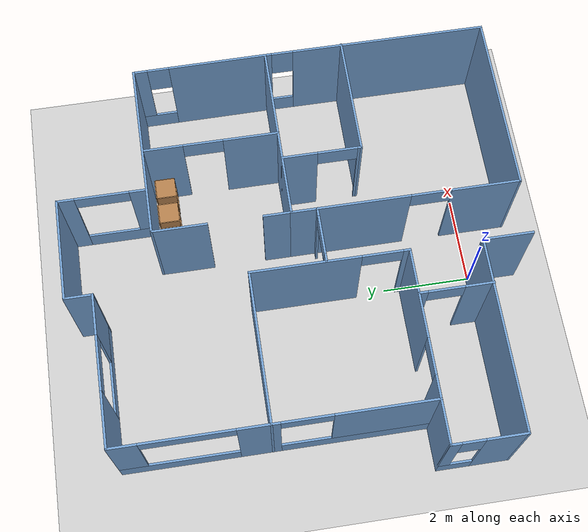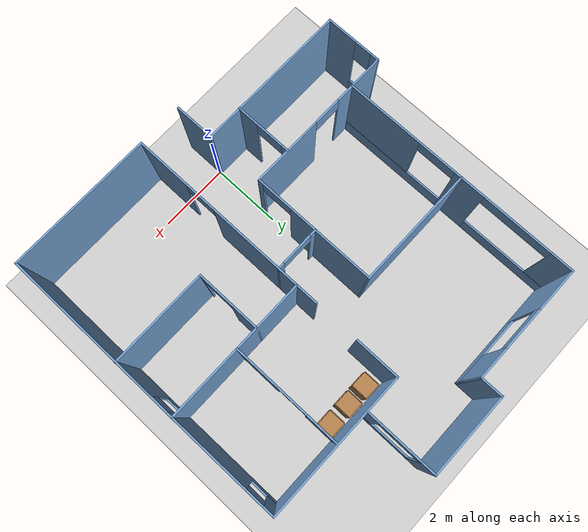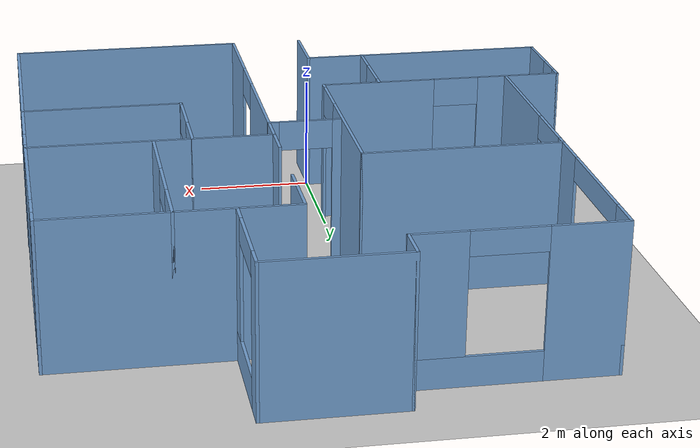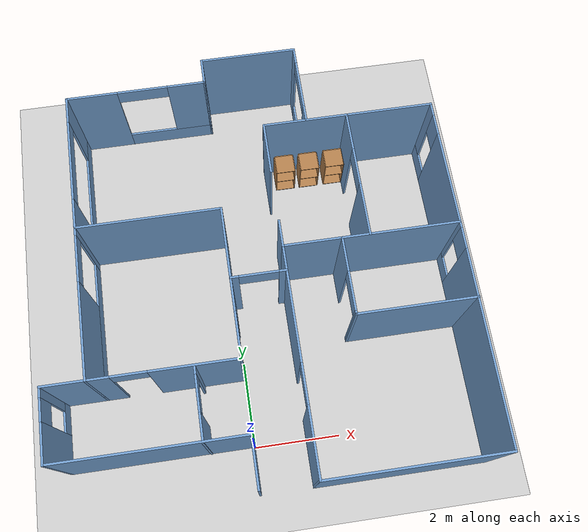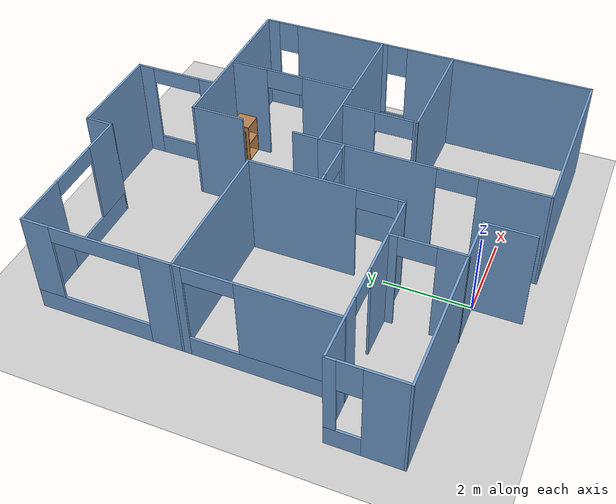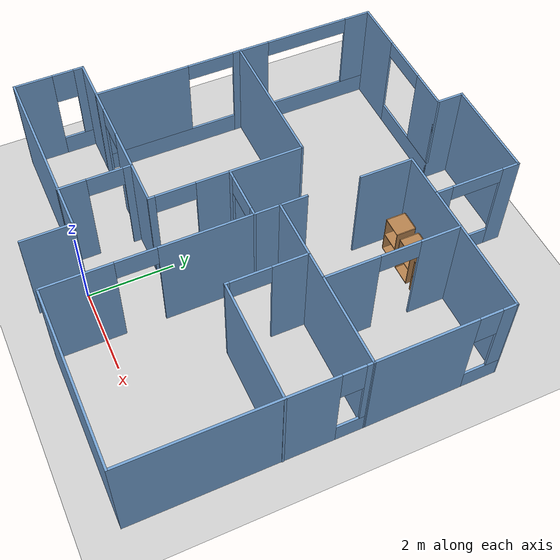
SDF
<sdf version="1.6">
 <world name="default">
  <model name="ground_plane">
   <static>1</static>
   <link name="link">
    <collision name="collision">
     <geometry><plane><normal>0 0 1</normal><size>100 100</size></plane></geometry>
     <surface>
      <contact><collide_bitmask>65535</collide_bitmask></contact>
      <friction><ode><mu>100</mu><mu2>50</mu2></ode></friction>
     </surface>
    </collision>
    <visual name="visual">
     <cast_shadows>0</cast_shadows>
     <geometry><plane><normal>0 0 1</normal><size>100 100</size></plane></geometry>
     <material>
      <script><uri>file://media/materials/scripts/gazebo.material</uri><name>Gazebo/Grey</name></script>
     </material>
    </visual>
   </link>
  </model>
  <model name="cabinet">
   <static>1</static>
   <link name="cabinet_bottom_plate">
    <inertial>
     <pose>0 0 -1 0 -0 0</pose>
     <inertia><ixx>2.05</ixx><ixy>0</ixy><ixz>0</ixz><iyy>2.05</iyy><iyz>0</iyz><izz>2.05</izz></inertia>
     <mass>25</mass>
    </inertial>
    <collision name="cabinet_bottom_plate_geom">
     <pose>0 0 0.01 0 -0 0</pose>
     <geometry><box><size>0.45 0.45 0.02</size></box></geometry>
    </collision>
    <visual name="cabinet_bottom_plate_geom_visual">
     <pose>0 0 0.01 0 -0 0</pose>
     <geometry><box><size>0.45 0.45 0.02</size></box></geometry>
     <material>
      <script><uri>file://media/materials/scripts/gazebo.material</uri><name>Gazebo/Wood</name></script>
     </material>
    </visual>
    <collision name="cabinet_bottom_plate_geom_cabinet_back_plate">
     <pose>0.235 0 0.51 0 -0 0</pose>
     <geometry><box><size>0.02 0.45 1.02</size></box></geometry>
    </collision>
    <visual name="cabinet_bottom_plate_geom_cabinet_back_plate_visual">
     <pose>0.235 0 0.51 0 -0 0</pose>
     <geometry><box><size>0.02 0.45 1.02</size></box></geometry>
     <material>
      <script><uri>file://media/materials/scripts/gazebo.material</uri><name>Gazebo/Wood</name></script>
     </material>
    </visual>
    <collision name="cabinet_bottom_plate_geom_cabinet_left_plate">
     <pose>0 0.235 0.51 0 -0 0</pose>
     <geometry><box><size>0.45 0.02 1.02</size></box></geometry>
    </collision>
    <visual name="cabinet_bottom_plate_geom_cabinet_left_plate_visual">
     <pose>0 0.235 0.51 0 -0 0</pose>
     <geometry><box><size>0.45 0.02 1.02</size></box></geometry>
     <material>
      <script><uri>file://media/materials/scripts/gazebo.material</uri><name>Gazebo/Wood</name></script>
     </material>
    </visual>
    <collision name="cabinet_bottom_plate_geom_cabinet_middle_plate">
     <pose>0 0 0.51 0 -0 0</pose>
     <geometry><box><size>0.45 0.45 0.02</size></box></geometry>
    </collision>
    <visual name="cabinet_bottom_plate_geom_cabinet_middle_plate_visual">
     <pose>0 0 0.51 0 -0 0</pose>
     <geometry><box><size>0.45 0.45 0.02</size></box></geometry>
     <material>
      <script><uri>file://media/materials/scripts/gazebo.material</uri><name>Gazebo/Wood</name></script>
     </material>
    </visual>
    <collision name="cabinet_bottom_plate_geom_cabinet_right_plate">
     <pose>0 -0.235 0.51 0 -0 0</pose>
     <geometry><box><size>0.45 0.02 1.02</size></box></geometry>
    </collision>
    <visual name="cabinet_bottom_plate_geom_cabinet_right_plate_visual">
     <pose>0 -0.235 0.51 0 -0 0</pose>
     <geometry><box><size>0.45 0.02 1.02</size></box></geometry>
     <material>
      <script><uri>file://media/materials/scripts/gazebo.material</uri><name>Gazebo/Wood</name></script>
     </material>
    </visual>
    <collision name="cabinet_bottom_plate_geom_cabinet_top_plate">
     <pose>0 0 1.01 0 -0 0</pose>
     <geometry><box><size>0.45 0.45 0.02</size></box></geometry>
    </collision>
    <visual name="cabinet_bottom_plate_geom_cabinet_top_plate_visual">
     <pose>0 0 1.01 0 -0 0</pose>
     <geometry><box><size>0.45 0.45 0.02</size></box></geometry>
     <material>
      <script><uri>file://media/materials/scripts/gazebo.material</uri><name>Gazebo/Wood</name></script>
     </material>
    </visual>
   </link>
   <pose>2.94164 6.72302 0 0 -0 1.57</pose>
  </model>
  <model name="cabinet_clone">
   <static>1</static>
   <link name="cabinet_bottom_plate">
    <inertial>
     <pose>0 0 -1 0 -0 0</pose>
     <inertia><ixx>2.05</ixx><ixy>0</ixy><ixz>0</ixz><iyy>2.05</iyy><iyz>0</iyz><izz>2.05</izz></inertia>
     <mass>25</mass>
    </inertial>
    <collision name="cabinet_bottom_plate_geom">
     <pose>0 0 0.01 0 -0 0</pose>
     <geometry><box><size>0.45 0.45 0.02</size></box></geometry>
    </collision>
    <visual name="cabinet_bottom_plate_geom_visual">
     <pose>0 0 0.01 0 -0 0</pose>
     <geometry><box><size>0.45 0.45 0.02</size></box></geometry>
     <material>
      <script><uri>file://media/materials/scripts/gazebo.material</uri><name>Gazebo/Wood</name></script>
     </material>
    </visual>
    <collision name="cabinet_bottom_plate_geom_cabinet_back_plate">
     <pose>0.235 0 0.51 0 -0 0</pose>
     <geometry><box><size>0.02 0.45 1.02</size></box></geometry>
    </collision>
    <visual name="cabinet_bottom_plate_geom_cabinet_back_plate_visual">
     <pose>0.235 0 0.51 0 -0 0</pose>
     <geometry><box><size>0.02 0.45 1.02</size></box></geometry>
     <material>
      <script><uri>file://media/materials/scripts/gazebo.material</uri><name>Gazebo/Wood</name></script>
     </material>
    </visual>
    <collision name="cabinet_bottom_plate_geom_cabinet_left_plate">
     <pose>0 0.235 0.51 0 -0 0</pose>
     <geometry><box><size>0.45 0.02 1.02</size></box></geometry>
    </collision>
    <visual name="cabinet_bottom_plate_geom_cabinet_left_plate_visual">
     <pose>0 0.235 0.51 0 -0 0</pose>
     <geometry><box><size>0.45 0.02 1.02</size></box></geometry>
     <material>
      <script><uri>file://media/materials/scripts/gazebo.material</uri><name>Gazebo/Wood</name></script>
     </material>
    </visual>
    <collision name="cabinet_bottom_plate_geom_cabinet_middle_plate">
     <pose>0 0 0.51 0 -0 0</pose>
     <geometry><box><size>0.45 0.45 0.02</size></box></geometry>
    </collision>
    <visual name="cabinet_bottom_plate_geom_cabinet_middle_plate_visual">
     <pose>0 0 0.51 0 -0 0</pose>
     <geometry><box><size>0.45 0.45 0.02</size></box></geometry>
     <material>
      <script><uri>file://media/materials/scripts/gazebo.material</uri><name>Gazebo/Wood</name></script>
     </material>
    </visual>
    <collision name="cabinet_bottom_plate_geom_cabinet_right_plate">
     <pose>0 -0.235 0.51 0 -0 0</pose>
     <geometry><box><size>0.45 0.02 1.02</size></box></geometry>
    </collision>
    <visual name="cabinet_bottom_plate_geom_cabinet_right_plate_visual">
     <pose>0 -0.235 0.51 0 -0 0</pose>
     <geometry><box><size>0.45 0.02 1.02</size></box></geometry>
     <material>
      <script><uri>file://media/materials/scripts/gazebo.material</uri><name>Gazebo/Wood</name></script>
     </material>
    </visual>
    <collision name="cabinet_bottom_plate_geom_cabinet_top_plate">
     <pose>0 0 1.01 0 -0 0</pose>
     <geometry><box><size>0.45 0.45 0.02</size></box></geometry>
    </collision>
    <visual name="cabinet_bottom_plate_geom_cabinet_top_plate_visual">
     <pose>0 0 1.01 0 -0 0</pose>
     <geometry><box><size>0.45 0.45 0.02</size></box></geometry>
     <material>
      <script><uri>file://media/materials/scripts/gazebo.material</uri><name>Gazebo/Wood</name></script>
     </material>
    </visual>
   </link>
   <pose>2.30652 6.72096 0 0 -0 1.57</pose>
  </model>
  <model name="cabinet_clone_0">
   <static>1</static>
   <link name="cabinet_bottom_plate">
    <inertial>
     <pose>0 0 -1 0 -0 0</pose>
     <inertia><ixx>2.05</ixx><ixy>0</ixy><ixz>0</ixz><iyy>2.05</iyy><iyz>0</iyz><izz>2.05</izz></inertia>
     <mass>25</mass>
    </inertial>
    <collision name="cabinet_bottom_plate_geom">
     <pose>0 0 0.01 0 -0 0</pose>
     <geometry><box><size>0.45 0.45 0.02</size></box></geometry>
    </collision>
    <visual name="cabinet_bottom_plate_geom_visual">
     <pose>0 0 0.01 0 -0 0</pose>
     <geometry><box><size>0.45 0.45 0.02</size></box></geometry>
     <material>
      <script><uri>file://media/materials/scripts/gazebo.material</uri><name>Gazebo/Wood</name></script>
     </material>
    </visual>
    <collision name="cabinet_bottom_plate_geom_cabinet_back_plate">
     <pose>0.235 0 0.51 0 -0 0</pose>
     <geometry><box><size>0.02 0.45 1.02</size></box></geometry>
    </collision>
    <visual name="cabinet_bottom_plate_geom_cabinet_back_plate_visual">
     <pose>0.235 0 0.51 0 -0 0</pose>
     <geometry><box><size>0.02 0.45 1.02</size></box></geometry>
     <material>
      <script><uri>file://media/materials/scripts/gazebo.material</uri><name>Gazebo/Wood</name></script>
     </material>
    </visual>
    <collision name="cabinet_bottom_plate_geom_cabinet_left_plate">
     <pose>0 0.235 0.51 0 -0 0</pose>
     <geometry><box><size>0.45 0.02 1.02</size></box></geometry>
    </collision>
    <visual name="cabinet_bottom_plate_geom_cabinet_left_plate_visual">
     <pose>0 0.235 0.51 0 -0 0</pose>
     <geometry><box><size>0.45 0.02 1.02</size></box></geometry>
     <material>
      <script><uri>file://media/materials/scripts/gazebo.material</uri><name>Gazebo/Wood</name></script>
     </material>
    </visual>
    <collision name="cabinet_bottom_plate_geom_cabinet_middle_plate">
     <pose>0 0 0.51 0 -0 0</pose>
     <geometry><box><size>0.45 0.45 0.02</size></box></geometry>
    </collision>
    <visual name="cabinet_bottom_plate_geom_cabinet_middle_plate_visual">
     <pose>0 0 0.51 0 -0 0</pose>
     <geometry><box><size>0.45 0.45 0.02</size></box></geometry>
     <material>
      <script><uri>file://media/materials/scripts/gazebo.material</uri><name>Gazebo/Wood</name></script>
     </material>
    </visual>
    <collision name="cabinet_bottom_plate_geom_cabinet_right_plate">
     <pose>0 -0.235 0.51 0 -0 0</pose>
     <geometry><box><size>0.45 0.02 1.02</size></box></geometry>
    </collision>
    <visual name="cabinet_bottom_plate_geom_cabinet_right_plate_visual">
     <pose>0 -0.235 0.51 0 -0 0</pose>
     <geometry><box><size>0.45 0.02 1.02</size></box></geometry>
     <material>
      <script><uri>file://media/materials/scripts/gazebo.material</uri><name>Gazebo/Wood</name></script>
     </material>
    </visual>
    <collision name="cabinet_bottom_plate_geom_cabinet_top_plate">
     <pose>0 0 1.01 0 -0 0</pose>
     <geometry><box><size>0.45 0.45 0.02</size></box></geometry>
    </collision>
    <visual name="cabinet_bottom_plate_geom_cabinet_top_plate_visual">
     <pose>0 0 1.01 0 -0 0</pose>
     <geometry><box><size>0.45 0.45 0.02</size></box></geometry>
     <material>
      <script><uri>file://media/materials/scripts/gazebo.material</uri><name>Gazebo/Wood</name></script>
     </material>
    </visual>
   </link>
   <pose>1.70059 6.72405 0 0 -0 1.57</pose>
  </model>
  <model name="T8_1160">
   <pose>0.49359 3.97815 0 0 -0 0</pose>
   <link name="Wall_0">
    <collision name="Wall_0_Collision">
     <geometry><box><size>4.31 0.05 2.5</size></box></geometry>
     <pose>0 0 1.25 0 -0 0</pose>
    </collision>
    <visual name="Wall_0_Visual">
     <pose>0 0 1.25 0 -0 0</pose>
     <geometry><box><size>4.31 0.05 2.5</size></box></geometry>
     <material>
      <script><uri>file://media/materials/scripts/gazebo.material</uri><name>Gazebo/Grey</name></script>
      <ambient>0.447059 0.623529 0.811765 1</ambient>
     </material>
     <meta><layer>0</layer></meta>
    </visual>
    <pose>-2.645 -3.94713 0 0 -0 3.14159</pose>
   </link>
   <link name="Wall_11">
    <collision name="Wall_11_Collision">
     <geometry><box><size>3.35552 0.05 2.5</size></box></geometry>
     <pose>0 0 1.25 0 -0 0</pose>
    </collision>
    <visual name="Wall_11_Visual">
     <pose>0 0 1.25 0 -0 0</pose>
     <geometry><box><size>3.35552 0.05 2.5</size></box></geometry>
     <material>
      <script><uri>file://media/materials/scripts/gazebo.material</uri><name>Gazebo/Grey</name></script>
      <ambient>0.447059 0.623529 0.811765 1</ambient>
     </material>
     <meta><layer>0</layer></meta>
    </visual>
    <pose>-2.1675 1.12987 0 0 -0 3.14159</pose>
   </link>
   <link name="Wall_14">
    <pose>-3.82 -0.608633 0 0 -0 -1.5708</pose>
    <visual name="Wall_14_Visual_0">
     <pose>-1.65666 0 1.25 0 -0 0</pose>
     <geometry><box><size>0.213672 0.05 2.5</size></box></geometry>
     <material>
      <script><uri>file://media/materials/scripts/gazebo.material</uri><name>Gazebo/Grey</name></script>
      <ambient>0.447059 0.623529 0.811765 1</ambient>
     </material>
     <meta><layer>0</layer></meta>
    </visual>
    <collision name="Wall_14_Collision_0">
     <geometry><box><size>0.213672 0.05 2.5</size></box></geometry>
     <pose>-1.65666 0 1.25 0 -0 0</pose>
    </collision>
    <visual name="Wall_14_Visual_1">
     <pose>0.106836 0 0.25 0 -0 0</pose>
     <geometry><box><size>3.31333 0.05 0.5</size></box></geometry>
     <material>
      <script><uri>file://media/materials/scripts/gazebo.material</uri><name>Gazebo/Grey</name></script>
      <ambient>0.447059 0.623529 0.811765 1</ambient>
     </material>
     <meta><layer>0</layer></meta>
    </visual>
    <collision name="Wall_14_Collision_1">
     <geometry><box><size>3.31333 0.05 0.5</size></box></geometry>
     <pose>0.106836 0 0.25 0 -0 0</pose>
    </collision>
    <visual name="Wall_14_Visual_2">
     <pose>0.656836 0 1.5 0 -0 0</pose>
     <geometry><box><size>2.21333 0.05 2</size></box></geometry>
     <material>
      <script><uri>file://media/materials/scripts/gazebo.material</uri><name>Gazebo/Grey</name></script>
      <ambient>0.447059 0.623529 0.811765 1</ambient>
     </material>
     <meta><layer>0</layer></meta>
    </visual>
    <collision name="Wall_14_Collision_2">
     <geometry><box><size>2.21333 0.05 2</size></box></geometry>
     <pose>0.656836 0 1.5 0 -0 0</pose>
    </collision>
    <visual name="Wall_14_Visual_3">
     <pose>-0.999828 0 2.3 0 -0 0</pose>
     <geometry><box><size>1.1 0.05 0.4</size></box></geometry>
     <material>
      <script><uri>file://media/materials/scripts/gazebo.material</uri><name>Gazebo/Grey</name></script>
      <ambient>0.447059 0.623529 0.811765 1</ambient>
     </material>
     <meta><layer>0</layer></meta>
    </visual>
    <collision name="Wall_14_Collision_3">
     <geometry><box><size>1.1 0.05 0.4</size></box></geometry>
     <pose>-0.999828 0 2.3 0 -0 0</pose>
    </collision>
   </link>
   <link name="Wall_16">
    <collision name="Wall_16_Collision">
     <geometry><box><size>1.15 0.05 2.5</size></box></geometry>
     <pose>0 0 1.25 0 -0 0</pose>
    </collision>
    <visual name="Wall_16_Visual">
     <pose>0 0 1.25 0 -0 0</pose>
     <geometry><box><size>1.15 0.05 2.5</size></box></geometry>
     <material>
      <script><uri>file://media/materials/scripts/gazebo.material</uri><name>Gazebo/Grey</name></script>
      <ambient>0.447059 0.623529 0.811765 1</ambient>
     </material>
     <meta><layer>0</layer></meta>
    </visual>
    <pose>-0.515 -4.49713 0 0 -0 -1.5708</pose>
   </link>
   <link name="Wall_18">
    <pose>0.735 -2.51163 0 0 -0 1.5708</pose>
    <visual name="Wall_18_Visual_0">
     <pose>-1.78983 0 1.25 0 -0 0</pose>
     <geometry><box><size>1.56134 0.05 2.5</size></box></geometry>
     <material>
      <script><uri>file://media/materials/scripts/gazebo.material</uri><name>Gazebo/Grey</name></script>
      <ambient>0.447059 0.623529 0.811765 1</ambient>
     </material>
     <meta><layer>0</layer></meta>
    </visual>
    <collision name="Wall_18_Collision_0">
     <geometry><box><size>1.56134 0.05 2.5</size></box></geometry>
     <pose>-1.78983 0 1.25 0 -0 0</pose>
    </collision>
    <visual name="Wall_18_Visual_1">
     <pose>1.23067 0 1.25 0 -0 0</pose>
     <geometry><box><size>2.67966 0.05 2.5</size></box></geometry>
     <material>
      <script><uri>file://media/materials/scripts/gazebo.material</uri><name>Gazebo/Grey</name></script>
      <ambient>0.447059 0.623529 0.811765 1</ambient>
     </material>
     <meta><layer>0</layer></meta>
    </visual>
    <collision name="Wall_18_Collision_1">
     <geometry><box><size>2.67966 0.05 2.5</size></box></geometry>
     <pose>1.23067 0 1.25 0 -0 0</pose>
    </collision>
    <visual name="Wall_18_Visual_2">
     <pose>-0.559159 0 2.25 0 -0 0</pose>
     <geometry><box><size>0.9 0.05 0.5</size></box></geometry>
     <material>
      <script><uri>file://media/materials/scripts/gazebo.material</uri><name>Gazebo/Grey</name></script>
      <ambient>0.447059 0.623529 0.811765 1</ambient>
     </material>
     <meta><layer>0</layer></meta>
    </visual>
    <collision name="Wall_18_Collision_2">
     <geometry><box><size>0.9 0.05 0.5</size></box></geometry>
     <pose>-0.559159 0 2.25 0 -0 0</pose>
    </collision>
   </link>
   <link name="Wall_2">
    <pose>-4.775 -3.14713 0 0 -0 1.5708</pose>
    <visual name="Wall_2_Visual_0">
     <pose>-0.375725 0 1.25 0 -0 0</pose>
     <geometry><box><size>0.89855 0.05 2.5</size></box></geometry>
     <material>
      <script><uri>file://media/materials/scripts/gazebo.material</uri><name>Gazebo/Grey</name></script>
      <ambient>0.447059 0.623529 0.811765 1</ambient>
     </material>
     <meta><layer>0</layer></meta>
    </visual>
    <collision name="Wall_2_Collision_0">
     <geometry><box><size>0.89855 0.05 2.5</size></box></geometry>
     <pose>-0.375725 0 1.25 0 -0 0</pose>
    </collision>
    <visual name="Wall_2_Visual_1">
     <pose>0.449275 0 0.25 0 -0 0</pose>
     <geometry><box><size>0.75145 0.05 0.5</size></box></geometry>
     <material>
      <script><uri>file://media/materials/scripts/gazebo.material</uri><name>Gazebo/Grey</name></script>
      <ambient>0.447059 0.623529 0.811765 1</ambient>
     </material>
     <meta><layer>0</layer></meta>
    </visual>
    <collision name="Wall_2_Collision_1">
     <geometry><box><size>0.75145 0.05 0.5</size></box></geometry>
     <pose>0.449275 0 0.25 0 -0 0</pose>
    </collision>
    <visual name="Wall_2_Visual_2">
     <pose>0.699275 0 1.5 0 -0 0</pose>
     <geometry><box><size>0.25145 0.05 2</size></box></geometry>
     <material>
      <script><uri>file://media/materials/scripts/gazebo.material</uri><name>Gazebo/Grey</name></script>
      <ambient>0.447059 0.623529 0.811765 1</ambient>
     </material>
     <meta><layer>0</layer></meta>
    </visual>
    <collision name="Wall_2_Collision_2">
     <geometry><box><size>0.25145 0.05 2</size></box></geometry>
     <pose>0.699275 0 1.5 0 -0 0</pose>
    </collision>
    <visual name="Wall_2_Visual_3">
     <pose>0.32355 0 2.1 0 -0 0</pose>
     <geometry><box><size>0.5 0.05 0.8</size></box></geometry>
     <material>
      <script><uri>file://media/materials/scripts/gazebo.material</uri><name>Gazebo/Grey</name></script>
      <ambient>0.447059 0.623529 0.811765 1</ambient>
     </material>
     <meta><layer>0</layer></meta>
    </visual>
    <collision name="Wall_2_Collision_3">
     <geometry><box><size>0.5 0.05 0.8</size></box></geometry>
     <pose>0.32355 0 2.1 0 -0 0</pose>
    </collision>
   </link>
   <link name="Wall_20">
    <collision name="Wall_20_Collision">
     <geometry><box><size>4.08 0.05 2.5</size></box></geometry>
     <pose>0 0 1.25 0 -0 0</pose>
    </collision>
    <visual name="Wall_20_Visual">
     <pose>0 0 1.25 0 -0 0</pose>
     <geometry><box><size>4.08 0.05 2.5</size></box></geometry>
     <material>
      <script><uri>file://media/materials/scripts/gazebo.material</uri><name>Gazebo/Grey</name></script>
      <ambient>0.447059 0.623529 0.811765 1</ambient>
     </material>
     <meta><layer>0</layer></meta>
    </visual>
    <pose>2.75 -5.05713 0 0 -0 0</pose>
   </link>
   <link name="Wall_22">
    <pose>4.765 -2.51163 0 0 -0 1.5708</pose>
    <visual name="Wall_22_Visual_0">
     <pose>-0.335589 0 1.25 0 -0 0</pose>
     <geometry><box><size>4.46982 0.05 2.5</size></box></geometry>
     <material>
      <script><uri>file://media/materials/scripts/gazebo.material</uri><name>Gazebo/Grey</name></script>
      <ambient>0.447059 0.623529 0.811765 1</ambient>
     </material>
     <meta><layer>0</layer></meta>
    </visual>
    <collision name="Wall_22_Collision_0">
     <geometry><box><size>4.46982 0.05 2.5</size></box></geometry>
     <pose>-0.335589 0 1.25 0 -0 0</pose>
    </collision>
    <visual name="Wall_22_Visual_1">
     <pose>2.23491 0 0.25 0 -0 0</pose>
     <geometry><box><size>0.671178 0.05 0.5</size></box></geometry>
     <material>
      <script><uri>file://media/materials/scripts/gazebo.material</uri><name>Gazebo/Grey</name></script>
      <ambient>0.447059 0.623529 0.811765 1</ambient>
     </material>
     <meta><layer>0</layer></meta>
    </visual>
    <collision name="Wall_22_Collision_1">
     <geometry><box><size>0.671178 0.05 0.5</size></box></geometry>
     <pose>2.23491 0 0.25 0 -0 0</pose>
    </collision>
    <visual name="Wall_22_Visual_2">
     <pose>2.48491 0 1.5 0 -0 0</pose>
     <geometry><box><size>0.171178 0.05 2</size></box></geometry>
     <material>
      <script><uri>file://media/materials/scripts/gazebo.material</uri><name>Gazebo/Grey</name></script>
      <ambient>0.447059 0.623529 0.811765 1</ambient>
     </material>
     <meta><layer>0</layer></meta>
    </visual>
    <collision name="Wall_22_Collision_2">
     <geometry><box><size>0.171178 0.05 2</size></box></geometry>
     <pose>2.48491 0 1.5 0 -0 0</pose>
    </collision>
    <visual name="Wall_22_Visual_3">
     <pose>2.14932 0 2.1 0 -0 0</pose>
     <geometry><box><size>0.5 0.05 0.8</size></box></geometry>
     <material>
      <script><uri>file://media/materials/scripts/gazebo.material</uri><name>Gazebo/Grey</name></script>
      <ambient>0.447059 0.623529 0.811765 1</ambient>
     </material>
     <meta><layer>0</layer></meta>
    </visual>
    <collision name="Wall_22_Collision_3">
     <geometry><box><size>0.5 0.05 0.8</size></box></geometry>
     <pose>2.14932 0 2.1 0 -0 0</pose>
    </collision>
   </link>
   <link name="Wall_24">
    <collision name="Wall_24_Collision">
     <geometry><box><size>4.08 0.05 2.5</size></box></geometry>
     <pose>0 0 1.25 0 -0 0</pose>
    </collision>
    <visual name="Wall_24_Visual">
     <pose>0 0 1.25 0 -0 0</pose>
     <geometry><box><size>4.08 0.05 2.5</size></box></geometry>
     <material>
      <script><uri>file://media/materials/scripts/gazebo.material</uri><name>Gazebo/Grey</name></script>
      <ambient>0.447059 0.623529 0.811765 1</ambient>
     </material>
     <meta><layer>0</layer></meta>
    </visual>
    <pose>2.75 0.033867 0 0 -0 0</pose>
   </link>
   <link name="Wall_27">
    <pose>0.1145 -0.539133 0 0 -0 0</pose>
    <visual name="Wall_27_Visual_0">
     <pose>-0.547154 0 1.25 0 -0 0</pose>
     <geometry><box><size>0.196693 0.05 2.5</size></box></geometry>
     <material>
      <script><uri>file://media/materials/scripts/gazebo.material</uri><name>Gazebo/Grey</name></script>
      <ambient>0.447059 0.623529 0.811765 1</ambient>
     </material>
     <meta><layer>0</layer></meta>
    </visual>
    <collision name="Wall_27_Collision_0">
     <geometry><box><size>0.196693 0.05 2.5</size></box></geometry>
     <pose>-0.547154 0 1.25 0 -0 0</pose>
    </collision>
    <visual name="Wall_27_Visual_1">
     <pose>0.548346 0 1.25 0 -0 0</pose>
     <geometry><box><size>0.194307 0.05 2.5</size></box></geometry>
     <material>
      <script><uri>file://media/materials/scripts/gazebo.material</uri><name>Gazebo/Grey</name></script>
      <ambient>0.447059 0.623529 0.811765 1</ambient>
     </material>
     <meta><layer>0</layer></meta>
    </visual>
    <collision name="Wall_27_Collision_1">
     <geometry><box><size>0.194307 0.05 2.5</size></box></geometry>
     <pose>0.548346 0 1.25 0 -0 0</pose>
    </collision>
    <visual name="Wall_27_Visual_2">
     <pose>0.001193 0 2.25 0 -0 0</pose>
     <geometry><box><size>0.9 0.05 0.5</size></box></geometry>
     <material>
      <script><uri>file://media/materials/scripts/gazebo.material</uri><name>Gazebo/Grey</name></script>
      <ambient>0.447059 0.623529 0.811765 1</ambient>
     </material>
     <meta><layer>0</layer></meta>
    </visual>
    <collision name="Wall_27_Collision_2">
     <geometry><box><size>0.9 0.05 0.5</size></box></geometry>
     <pose>0.001193 0 2.25 0 -0 0</pose>
    </collision>
   </link>
   <link name="Wall_29">
    <collision name="Wall_29_Collision">
     <geometry><box><size>0.65 0.05 2.5</size></box></geometry>
     <pose>0 0 1.25 0 -0 0</pose>
    </collision>
    <visual name="Wall_29_Visual">
     <pose>0 0 1.25 0 -0 0</pose>
     <geometry><box><size>0.65 0.05 2.5</size></box></geometry>
     <material>
      <script><uri>file://media/materials/scripts/gazebo.material</uri><name>Gazebo/Grey</name></script>
      <ambient>0.447059 0.623529 0.811765 1</ambient>
     </material>
     <meta><layer>0</layer></meta>
    </visual>
    <pose>0.735 0.333867 0 0 -0 1.5708</pose>
   </link>
   <link name="Wall_31">
    <collision name="Wall_31_Collision">
     <geometry><box><size>2.75 0.05 2.5</size></box></geometry>
     <pose>0 0 1.25 0 -0 0</pose>
    </collision>
    <visual name="Wall_31_Visual">
     <pose>0 0 1.25 0 -0 0</pose>
     <geometry><box><size>2.75 0.05 2.5</size></box></geometry>
     <material>
      <script><uri>file://media/materials/scripts/gazebo.material</uri><name>Gazebo/Grey</name></script>
      <ambient>0.447059 0.623529 0.811765 1</ambient>
     </material>
     <meta><layer>0</layer></meta>
    </visual>
    <pose>3.425 -1.74713 0 0 -0 3.14159</pose>
   </link>
   <link name="Wall_33">
    <pose>2.075 -0.856633 0 0 -0 1.5708</pose>
    <visual name="Wall_33_Visual_0">
     <pose>-0.861434 0 1.25 0 -0 0</pose>
     <geometry><box><size>0.108132 0.05 2.5</size></box></geometry>
     <material>
      <script><uri>file://media/materials/scripts/gazebo.material</uri><name>Gazebo/Grey</name></script>
      <ambient>0.447059 0.623529 0.811765 1</ambient>
     </material>
     <meta><layer>0</layer></meta>
    </visual>
    <collision name="Wall_33_Collision_0">
     <geometry><box><size>0.108132 0.05 2.5</size></box></geometry>
     <pose>-0.861434 0 1.25 0 -0 0</pose>
    </collision>
    <visual name="Wall_33_Visual_1">
     <pose>0.504066 0 1.25 0 -0 0</pose>
     <geometry><box><size>0.822868 0.05 2.5</size></box></geometry>
     <material>
      <script><uri>file://media/materials/scripts/gazebo.material</uri><name>Gazebo/Grey</name></script>
      <ambient>0.447059 0.623529 0.811765 1</ambient>
     </material>
     <meta><layer>0</layer></meta>
    </visual>
    <collision name="Wall_33_Collision_1">
     <geometry><box><size>0.822868 0.05 2.5</size></box></geometry>
     <pose>0.504066 0 1.25 0 -0 0</pose>
    </collision>
    <visual name="Wall_33_Visual_2">
     <pose>-0.357368 0 2.25 0 -0 0</pose>
     <geometry><box><size>0.9 0.05 0.5</size></box></geometry>
     <material>
      <script><uri>file://media/materials/scripts/gazebo.material</uri><name>Gazebo/Grey</name></script>
      <ambient>0.447059 0.623529 0.811765 1</ambient>
     </material>
     <meta><layer>0</layer></meta>
    </visual>
    <collision name="Wall_33_Collision_2">
     <geometry><box><size>0.9 0.05 0.5</size></box></geometry>
     <pose>-0.357368 0 2.25 0 -0 0</pose>
    </collision>
   </link>
   <link name="Wall_35">
    <pose>-3.82 2.79337 0 0 -0 1.5708</pose>
    <visual name="Wall_35_Visual_0">
     <pose>-1.32132 0 1.25 0 -0 0</pose>
     <geometry><box><size>0.734362 0.05 2.5</size></box></geometry>
     <material>
      <script><uri>file://media/materials/scripts/gazebo.material</uri><name>Gazebo/Grey</name></script>
      <ambient>0.447059 0.623529 0.811765 1</ambient>
     </material>
     <meta><layer>0</layer></meta>
    </visual>
    <collision name="Wall_35_Collision_0">
     <geometry><box><size>0.734362 0.05 2.5</size></box></geometry>
     <pose>-1.32132 0 1.25 0 -0 0</pose>
    </collision>
    <visual name="Wall_35_Visual_1">
     <pose>0.367181 0 0.25 0 -0 0</pose>
     <geometry><box><size>2.64264 0.05 0.5</size></box></geometry>
     <material>
      <script><uri>file://media/materials/scripts/gazebo.material</uri><name>Gazebo/Grey</name></script>
      <ambient>0.447059 0.623529 0.811765 1</ambient>
     </material>
     <meta><layer>0</layer></meta>
    </visual>
    <collision name="Wall_35_Collision_1">
     <geometry><box><size>2.64264 0.05 0.5</size></box></geometry>
     <pose>0.367181 0 0.25 0 -0 0</pose>
    </collision>
    <visual name="Wall_35_Visual_2">
     <pose>1.36718 0 1.5 0 -0 0</pose>
     <geometry><box><size>0.642638 0.05 2</size></box></geometry>
     <material>
      <script><uri>file://media/materials/scripts/gazebo.material</uri><name>Gazebo/Grey</name></script>
      <ambient>0.447059 0.623529 0.811765 1</ambient>
     </material>
     <meta><layer>0</layer></meta>
    </visual>
    <collision name="Wall_35_Collision_2">
     <geometry><box><size>0.642638 0.05 2</size></box></geometry>
     <pose>1.36718 0 1.5 0 -0 0</pose>
    </collision>
    <visual name="Wall_35_Visual_3">
     <pose>0.045862 0 2.3 0 -0 0</pose>
     <geometry><box><size>2 0.05 0.4</size></box></geometry>
     <material>
      <script><uri>file://media/materials/scripts/gazebo.material</uri><name>Gazebo/Grey</name></script>
      <ambient>0.447059 0.623529 0.811765 1</ambient>
     </material>
     <meta><layer>0</layer></meta>
    </visual>
    <collision name="Wall_35_Collision_3">
     <geometry><box><size>2 0.05 0.4</size></box></geometry>
     <pose>0.045862 0 2.3 0 -0 0</pose>
    </collision>
   </link>
   <link name="Wall_37">
    <pose>-2.1675 4.45687 0 0 -0 0</pose>
    <visual name="Wall_37_Visual_0">
     <pose>-1.06148 0 1.25 0 -0 0</pose>
     <geometry><box><size>1.23203 0.05 2.5</size></box></geometry>
     <material>
      <script><uri>file://media/materials/scripts/gazebo.material</uri><name>Gazebo/Grey</name></script>
      <ambient>0.447059 0.623529 0.811765 1</ambient>
     </material>
     <meta><layer>0</layer></meta>
    </visual>
    <collision name="Wall_37_Collision_0">
     <geometry><box><size>1.23203 0.05 2.5</size></box></geometry>
     <pose>-1.06148 0 1.25 0 -0 0</pose>
    </collision>
    <visual name="Wall_37_Visual_1">
     <pose>0.616016 0 0.25 0 -0 0</pose>
     <geometry><box><size>2.12297 0.05 0.5</size></box></geometry>
     <material>
      <script><uri>file://media/materials/scripts/gazebo.material</uri><name>Gazebo/Grey</name></script>
      <ambient>0.447059 0.623529 0.811765 1</ambient>
     </material>
     <meta><layer>0</layer></meta>
    </visual>
    <collision name="Wall_37_Collision_1">
     <geometry><box><size>2.12297 0.05 0.5</size></box></geometry>
     <pose>0.616016 0 0.25 0 -0 0</pose>
    </collision>
    <visual name="Wall_37_Visual_2">
     <pose>1.21602 0 1.5 0 -0 0</pose>
     <geometry><box><size>0.922968 0.05 2</size></box></geometry>
     <material>
      <script><uri>file://media/materials/scripts/gazebo.material</uri><name>Gazebo/Grey</name></script>
      <ambient>0.447059 0.623529 0.811765 1</ambient>
     </material>
     <meta><layer>0</layer></meta>
    </visual>
    <collision name="Wall_37_Collision_2">
     <geometry><box><size>0.922968 0.05 2</size></box></geometry>
     <pose>1.21602 0 1.5 0 -0 0</pose>
    </collision>
    <visual name="Wall_37_Visual_3">
     <pose>0.154532 0 2.3 0 -0 0</pose>
     <geometry><box><size>1.2 0.05 0.4</size></box></geometry>
     <material>
      <script><uri>file://media/materials/scripts/gazebo.material</uri><name>Gazebo/Grey</name></script>
      <ambient>0.447059 0.623529 0.811765 1</ambient>
     </material>
     <meta><layer>0</layer></meta>
    </visual>
    <collision name="Wall_37_Collision_3">
     <geometry><box><size>1.2 0.05 0.4</size></box></geometry>
     <pose>0.154532 0 2.3 0 -0 0</pose>
    </collision>
   </link>
   <link name="Wall_39">
    <pose>4.755 1.56037 0 0 -0 1.57735</pose>
    <visual name="Wall_39_Visual_0">
     <pose>-0.419155 0 1.25 0 -0 0</pose>
     <geometry><box><size>2.26536 0.05 2.5</size></box></geometry>
     <material>
      <script><uri>file://media/materials/scripts/gazebo.material</uri><name>Gazebo/Grey</name></script>
      <ambient>0.447059 0.623529 0.811765 1</ambient>
     </material>
     <meta><layer>0</layer></meta>
    </visual>
    <collision name="Wall_39_Collision_0">
     <geometry><box><size>2.26536 0.05 2.5</size></box></geometry>
     <pose>-0.419155 0 1.25 0 -0 0</pose>
    </collision>
    <visual name="Wall_39_Visual_1">
     <pose>1.13268 0 0.25 0 -0 0</pose>
     <geometry><box><size>0.838311 0.05 0.5</size></box></geometry>
     <material>
      <script><uri>file://media/materials/scripts/gazebo.material</uri><name>Gazebo/Grey</name></script>
      <ambient>0.447059 0.623529 0.811765 1</ambient>
     </material>
     <meta><layer>0</layer></meta>
    </visual>
    <collision name="Wall_39_Collision_1">
     <geometry><box><size>0.838311 0.05 0.5</size></box></geometry>
     <pose>1.13268 0 0.25 0 -0 0</pose>
    </collision>
    <visual name="Wall_39_Visual_2">
     <pose>1.38268 0 1.5 0 -0 0</pose>
     <geometry><box><size>0.338311 0.05 2</size></box></geometry>
     <material>
      <script><uri>file://media/materials/scripts/gazebo.material</uri><name>Gazebo/Grey</name></script>
      <ambient>0.447059 0.623529 0.811765 1</ambient>
     </material>
     <meta><layer>0</layer></meta>
    </visual>
    <collision name="Wall_39_Collision_2">
     <geometry><box><size>0.338311 0.05 2</size></box></geometry>
     <pose>1.38268 0 1.5 0 -0 0</pose>
    </collision>
    <visual name="Wall_39_Visual_3">
     <pose>0.963525 0 2.1 0 -0 0</pose>
     <geometry><box><size>0.5 0.05 0.8</size></box></geometry>
     <material>
      <script><uri>file://media/materials/scripts/gazebo.material</uri><name>Gazebo/Grey</name></script>
      <ambient>0.447059 0.623529 0.811765 1</ambient>
     </material>
     <meta><layer>0</layer></meta>
    </visual>
    <collision name="Wall_39_Collision_3">
     <geometry><box><size>0.5 0.05 0.8</size></box></geometry>
     <pose>0.963525 0 2.1 0 -0 0</pose>
    </collision>
   </link>
   <link name="Wall_4">
    <pose>-2.645 -2.34713 0 0 -0 0</pose>
    <visual name="Wall_4_Visual_0">
     <pose>-1.40931 0 1.25 0 -0 0</pose>
     <geometry><box><size>1.49138 0.05 2.5</size></box></geometry>
     <material>
      <script><uri>file://media/materials/scripts/gazebo.material</uri><name>Gazebo/Grey</name></script>
      <ambient>0.447059 0.623529 0.811765 1</ambient>
     </material>
     <meta><layer>0</layer></meta>
    </visual>
    <collision name="Wall_4_Collision_0">
     <geometry><box><size>1.49138 0.05 2.5</size></box></geometry>
     <pose>-1.40931 0 1.25 0 -0 0</pose>
    </collision>
    <visual name="Wall_4_Visual_1">
     <pose>1.14569 0 1.25 0 -0 0</pose>
     <geometry><box><size>2.01862 0.05 2.5</size></box></geometry>
     <material>
      <script><uri>file://media/materials/scripts/gazebo.material</uri><name>Gazebo/Grey</name></script>
      <ambient>0.447059 0.623529 0.811765 1</ambient>
     </material>
     <meta><layer>0</layer></meta>
    </visual>
    <collision name="Wall_4_Collision_1">
     <geometry><box><size>2.01862 0.05 2.5</size></box></geometry>
     <pose>1.14569 0 1.25 0 -0 0</pose>
    </collision>
    <visual name="Wall_4_Visual_2">
     <pose>-0.263615 0 2.25 0 -0 0</pose>
     <geometry><box><size>0.8 0.05 0.5</size></box></geometry>
     <material>
      <script><uri>file://media/materials/scripts/gazebo.material</uri><name>Gazebo/Grey</name></script>
      <ambient>0.447059 0.623529 0.811765 1</ambient>
     </material>
     <meta><layer>0</layer></meta>
    </visual>
    <collision name="Wall_4_Collision_2">
     <geometry><box><size>0.8 0.05 0.5</size></box></geometry>
     <pose>-0.263615 0 2.25 0 -0 0</pose>
    </collision>
   </link>
   <link name="Wall_41">
    <collision name="Wall_41_Collision">
     <geometry><box><size>4.06 0.05 2.5</size></box></geometry>
     <pose>0 0 1.25 0 -0 0</pose>
    </collision>
    <visual name="Wall_41_Visual">
     <pose>0 0 1.25 0 -0 0</pose>
     <geometry><box><size>4.06 0.05 2.5</size></box></geometry>
     <material>
      <script><uri>file://media/materials/scripts/gazebo.material</uri><name>Gazebo/Grey</name></script>
      <ambient>0.447059 0.623529 0.811765 1</ambient>
     </material>
     <meta><layer>0</layer></meta>
    </visual>
    <pose>2.74 3.08687 0 0 -0 3.14159</pose>
   </link>
   <link name="Wall_43">
    <collision name="Wall_43_Collision">
     <geometry><box><size>1.253 0.05 2.5</size></box></geometry>
     <pose>0 0 1.25 0 -0 0</pose>
    </collision>
    <visual name="Wall_43_Visual">
     <pose>0 0 1.25 0 -0 0</pose>
     <geometry><box><size>1.253 0.05 2.5</size></box></geometry>
     <material>
      <script><uri>file://media/materials/scripts/gazebo.material</uri><name>Gazebo/Grey</name></script>
      <ambient>0.447059 0.623529 0.811765 1</ambient>
     </material>
     <meta><layer>0</layer></meta>
    </visual>
    <pose>0.735 2.48537 0 0 -0 -1.5708</pose>
   </link>
   <link name="Wall_45">
    <pose>2.711 1.56037 0 0 -0 -1.5708</pose>
    <visual name="Wall_45_Visual_0">
     <pose>-1.0853 0 1.25 0 -0 0</pose>
     <geometry><box><size>0.9324 0.05 2.5</size></box></geometry>
     <material>
      <script><uri>file://media/materials/scripts/gazebo.material</uri><name>Gazebo/Grey</name></script>
      <ambient>0.447059 0.623529 0.811765 1</ambient>
     </material>
     <meta><layer>0</layer></meta>
    </visual>
    <collision name="Wall_45_Collision_0">
     <geometry><box><size>0.9324 0.05 2.5</size></box></geometry>
     <pose>-1.0853 0 1.25 0 -0 0</pose>
    </collision>
    <visual name="Wall_45_Visual_1">
     <pose>0.9162 0 1.25 0 -0 0</pose>
     <geometry><box><size>1.2706 0.05 2.5</size></box></geometry>
     <material>
      <script><uri>file://media/materials/scripts/gazebo.material</uri><name>Gazebo/Grey</name></script>
      <ambient>0.447059 0.623529 0.811765 1</ambient>
     </material>
     <meta><layer>0</layer></meta>
    </visual>
    <collision name="Wall_45_Collision_1">
     <geometry><box><size>1.2706 0.05 2.5</size></box></geometry>
     <pose>0.9162 0 1.25 0 -0 0</pose>
    </collision>
    <visual name="Wall_45_Visual_2">
     <pose>-0.1691 0 2.25 0 -0 0</pose>
     <geometry><box><size>0.9 0.05 0.5</size></box></geometry>
     <material>
      <script><uri>file://media/materials/scripts/gazebo.material</uri><name>Gazebo/Grey</name></script>
      <ambient>0.447059 0.623529 0.811765 1</ambient>
     </material>
     <meta><layer>0</layer></meta>
    </visual>
    <collision name="Wall_45_Collision_2">
     <geometry><box><size>0.9 0.05 0.5</size></box></geometry>
     <pose>-0.1691 0 2.25 0 -0 0</pose>
    </collision>
   </link>
   <link name="Wall_47">
    <collision name="Wall_47_Collision">
     <geometry><box><size>0.65 0.05 2.5</size></box></geometry>
     <pose>0 0 1.25 0 -0 0</pose>
    </collision>
    <visual name="Wall_47_Visual">
     <pose>0 0 1.25 0 -0 0</pose>
     <geometry><box><size>0.65 0.05 2.5</size></box></geometry>
     <material>
      <script><uri>file://media/materials/scripts/gazebo.material</uri><name>Gazebo/Grey</name></script>
      <ambient>0.447059 0.623529 0.811765 1</ambient>
     </material>
     <meta><layer>0</layer></meta>
    </visual>
    <pose>-0.515 4.75687 0 0 -0 1.5708</pose>
   </link>
   <link name="Wall_48">
    <collision name="Wall_48_Collision">
     <geometry><box><size>2.31494 0.05 2.5</size></box></geometry>
     <pose>0 0 1.25 0 -0 0</pose>
    </collision>
    <visual name="Wall_48_Visual">
     <pose>0 0 1.25 0 -0 0</pose>
     <geometry><box><size>2.31494 0.05 2.5</size></box></geometry>
     <material>
      <script><uri>file://media/materials/scripts/gazebo.material</uri><name>Gazebo/Grey</name></script>
      <ambient>0.447059 0.623529 0.811765 1</ambient>
     </material>
     <meta><layer>0</layer></meta>
    </visual>
    <pose>0.6175 5.05687 0 0 -0 0</pose>
   </link>
   <link name="Wall_49">
    <pose>1.75 4.07787 0 0 -0 -1.5708</pose>
    <visual name="Wall_49_Visual_0">
     <pose>-0.800206 0 1.25 0 -0 0</pose>
     <geometry><box><size>0.408123 0.05 2.5</size></box></geometry>
     <material>
      <script><uri>file://media/materials/scripts/gazebo.material</uri><name>Gazebo/Grey</name></script>
      <ambient>0.447059 0.623529 0.811765 1</ambient>
     </material>
     <meta><layer>0</layer></meta>
    </visual>
    <collision name="Wall_49_Collision_0">
     <geometry><box><size>0.408123 0.05 2.5</size></box></geometry>
     <pose>-0.800206 0 1.25 0 -0 0</pose>
    </collision>
    <visual name="Wall_49_Visual_1">
     <pose>0.204061 0 0.25 0 -0 0</pose>
     <geometry><box><size>1.60041 0.05 0.5</size></box></geometry>
     <material>
      <script><uri>file://media/materials/scripts/gazebo.material</uri><name>Gazebo/Grey</name></script>
      <ambient>0.447059 0.623529 0.811765 1</ambient>
     </material>
     <meta><layer>0</layer></meta>
    </visual>
    <collision name="Wall_49_Collision_1">
     <geometry><box><size>1.60041 0.05 0.5</size></box></geometry>
     <pose>0.204061 0 0.25 0 -0 0</pose>
    </collision>
    <visual name="Wall_49_Visual_2">
     <pose>0.804061 0 1.5 0 -0 0</pose>
     <geometry><box><size>0.400411 0.05 2</size></box></geometry>
     <material>
      <script><uri>file://media/materials/scripts/gazebo.material</uri><name>Gazebo/Grey</name></script>
      <ambient>0.447059 0.623529 0.811765 1</ambient>
     </material>
     <meta><layer>0</layer></meta>
    </visual>
    <collision name="Wall_49_Collision_2">
     <geometry><box><size>0.400411 0.05 2</size></box></geometry>
     <pose>0.804061 0 1.5 0 -0 0</pose>
    </collision>
    <visual name="Wall_49_Visual_3">
     <pose>0.003856 0 2.3 0 -0 0</pose>
     <geometry><box><size>1.2 0.05 0.4</size></box></geometry>
     <material>
      <script><uri>file://media/materials/scripts/gazebo.material</uri><name>Gazebo/Grey</name></script>
      <ambient>0.447059 0.623529 0.811765 1</ambient>
     </material>
     <meta><layer>0</layer></meta>
    </visual>
    <collision name="Wall_49_Collision_3">
     <geometry><box><size>1.2 0.05 0.4</size></box></geometry>
     <pose>0.003856 0 2.3 0 -0 0</pose>
    </collision>
   </link>
   <link name="Wall_7">
    <pose>-1.515 -3.16113 0 0 -0 -1.5708</pose>
    <visual name="Wall_7_Visual_0">
     <pose>-0.720934 0 1.25 0 -0 0</pose>
     <geometry><box><size>0.208131 0.05 2.5</size></box></geometry>
     <material>
      <script><uri>file://media/materials/scripts/gazebo.material</uri><name>Gazebo/Grey</name></script>
      <ambient>0.447059 0.623529 0.811765 1</ambient>
     </material>
     <meta><layer>0</layer></meta>
    </visual>
    <collision name="Wall_7_Collision_0">
     <geometry><box><size>0.208131 0.05 2.5</size></box></geometry>
     <pose>-0.720934 0 1.25 0 -0 0</pose>
    </collision>
    <visual name="Wall_7_Visual_1">
     <pose>0.504066 0 1.25 0 -0 0</pose>
     <geometry><box><size>0.641869 0.05 2.5</size></box></geometry>
     <material>
      <script><uri>file://media/materials/scripts/gazebo.material</uri><name>Gazebo/Grey</name></script>
      <ambient>0.447059 0.623529 0.811765 1</ambient>
     </material>
     <meta><layer>0</layer></meta>
    </visual>
    <collision name="Wall_7_Collision_1">
     <geometry><box><size>0.641869 0.05 2.5</size></box></geometry>
     <pose>0.504066 0 1.25 0 -0 0</pose>
    </collision>
    <visual name="Wall_7_Visual_2">
     <pose>-0.216869 0 2.25 0 -0 0</pose>
     <geometry><box><size>0.8 0.05 0.5</size></box></geometry>
     <material>
      <script><uri>file://media/materials/scripts/gazebo.material</uri><name>Gazebo/Grey</name></script>
      <ambient>0.447059 0.623529 0.811765 1</ambient>
     </material>
     <meta><layer>0</layer></meta>
    </visual>
    <collision name="Wall_7_Collision_2">
     <geometry><box><size>0.8 0.05 0.5</size></box></geometry>
     <pose>-0.216869 0 2.25 0 -0 0</pose>
    </collision>
   </link>
   <link name="Wall_9">
    <pose>-0.515 -0.608633 0 0 -0 1.5708</pose>
    <visual name="Wall_9_Visual_0">
     <pose>-1.68098 0 1.25 0 -0 0</pose>
     <geometry><box><size>0.165039 0.05 2.5</size></box></geometry>
     <material>
      <script><uri>file://media/materials/scripts/gazebo.material</uri><name>Gazebo/Grey</name></script>
      <ambient>0.447059 0.623529 0.811765 1</ambient>
     </material>
     <meta><layer>0</layer></meta>
    </visual>
    <collision name="Wall_9_Collision_0">
     <geometry><box><size>0.165039 0.05 2.5</size></box></geometry>
     <pose>-1.68098 0 1.25 0 -0 0</pose>
    </collision>
    <visual name="Wall_9_Visual_1">
     <pose>0.532519 0 1.25 0 -0 0</pose>
     <geometry><box><size>2.46196 0.05 2.5</size></box></geometry>
     <material>
      <script><uri>file://media/materials/scripts/gazebo.material</uri><name>Gazebo/Grey</name></script>
      <ambient>0.447059 0.623529 0.811765 1</ambient>
     </material>
     <meta><layer>0</layer></meta>
    </visual>
    <collision name="Wall_9_Collision_1">
     <geometry><box><size>2.46196 0.05 2.5</size></box></geometry>
     <pose>0.532519 0 1.25 0 -0 0</pose>
    </collision>
    <visual name="Wall_9_Visual_2">
     <pose>-1.14846 0 2.25 0 -0 0</pose>
     <geometry><box><size>0.9 0.05 0.5</size></box></geometry>
     <material>
      <script><uri>file://media/materials/scripts/gazebo.material</uri><name>Gazebo/Grey</name></script>
      <ambient>0.447059 0.623529 0.811765 1</ambient>
     </material>
     <meta><layer>0</layer></meta>
    </visual>
    <collision name="Wall_9_Collision_2">
     <geometry><box><size>0.9 0.05 0.5</size></box></geometry>
     <pose>-1.14846 0 2.25 0 -0 0</pose>
    </collision>
   </link>
   <static>1</static>
  </model>
 </world>
</sdf>
